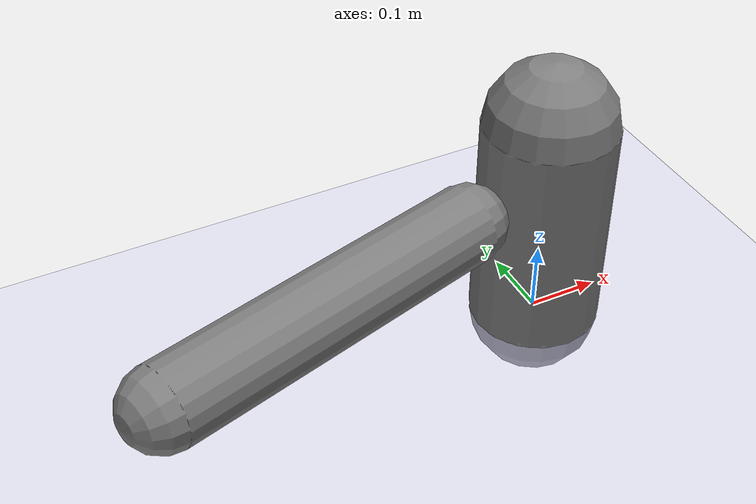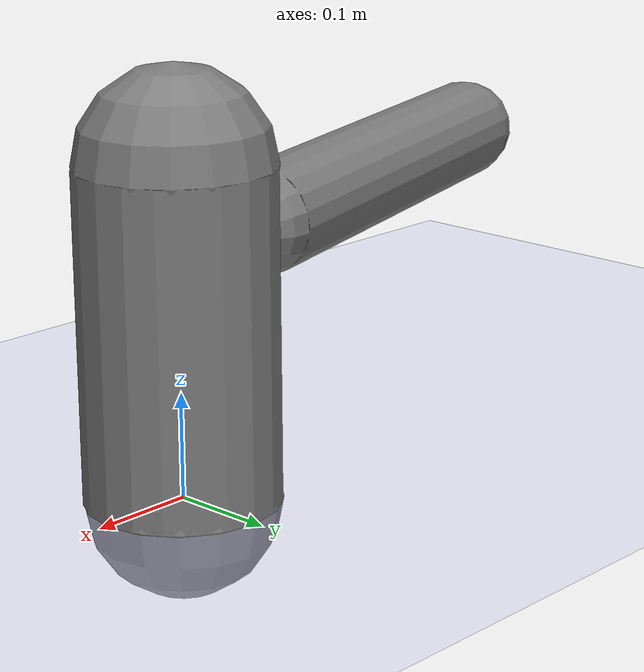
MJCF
<?xml version='1.0' encoding='UTF-8'?>
<mujoco model="robot_model">
  <worldbody>
    <light name="light" pos="0 -3 10" dir="0 0.5 -1" diffuse=".8 .8 .8" specular="0.1 0.1 0.1"/>
    <geom name="floor" type="plane" size="10.0 10.0 0.1" pos="0 0 0" rgba="0.8 0.8 1 1" contype="2" conaffinity="1"/>
    <body name="limb0" pos="0 0 0">
      <geom name="limb0_geom" type="capsule" fromto="0 0 0 0 0 0.3079146855055481" size="0.09095693498571633" density="432.77881914895573" contype="1" conaffinity="2"/>
      <site type="sphere" size="0.01" name="limb0_site0" pos="-0.14198175315482822 -0.039922632235699675 0.22462270415276678" quat="0.7071067811865476 0.19140277764839203 -0.680709171899777 0.0"/>
      <freejoint name="limb0_root"/>
      <body name="limb1" pos="-0.14198175315482822 -0.039922632235699675 0.22462270415276678" quat="0.7071067811865476 0.19140277764839203 -0.680709171899777 0.0">
        <geom name="limb1_geom" type="capsule" fromto="0 0 0 0 0 0.4651022309110887" size="0.05253080956801089" density="885.3086206137439" contype="1" conaffinity="2"/>
        <joint name="joint_limb0_limb1_0" type="hinge" axis="1 0 0" range="-113.50724237877682 113.50724237877682" damping="5.0"/>
      </body>
    </body>
  </worldbody>
  <actuator>
    <position name="position_actuator_joint_limb0_limb1_0" joint="joint_limb0_limb1_0" gear="1.7237803311822981" inheritrange="1" forcerange="-20.53585829020267 20.53585829020267" forcelimited="true" kp="100.0"/>
  </actuator>
  <contact>
    <pair geom1="limb0_geom" geom2="limb1_geom"/>
  </contact>
</mujoco>
